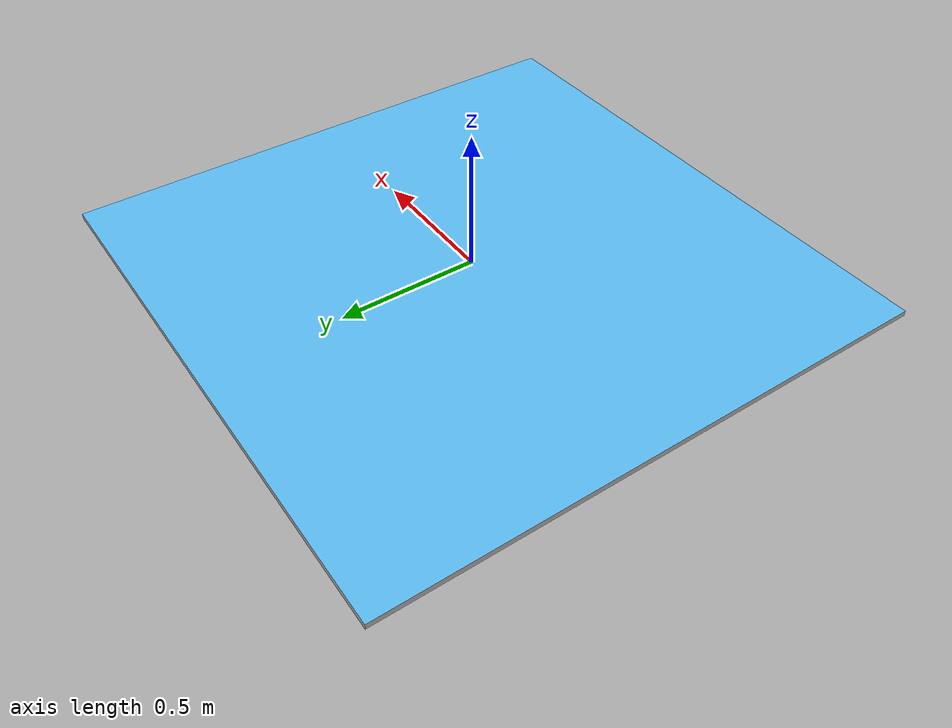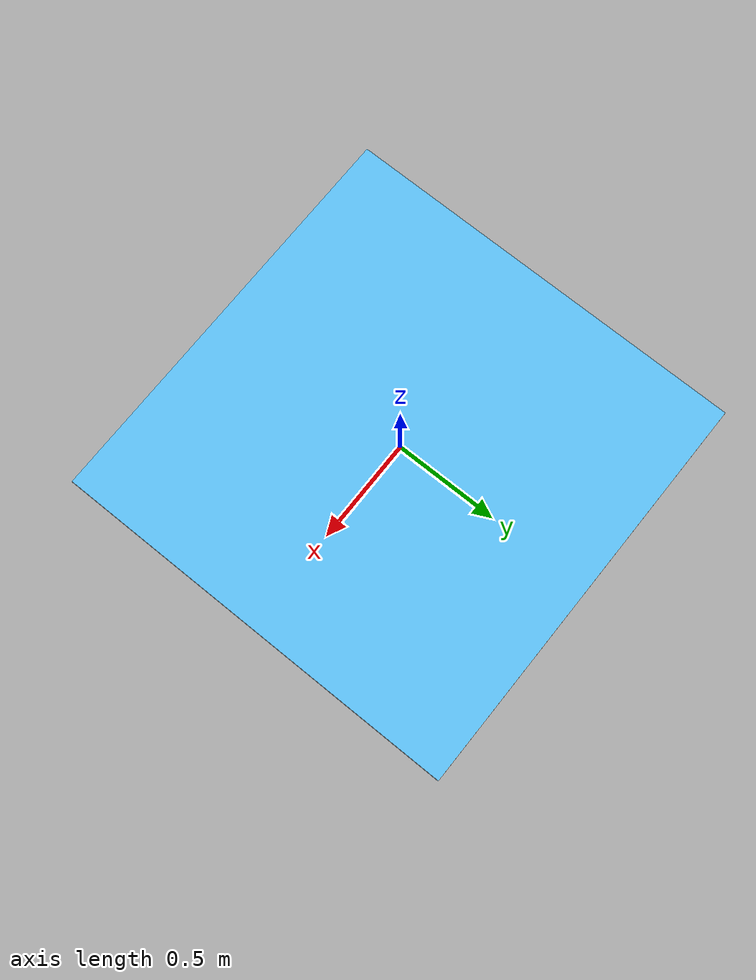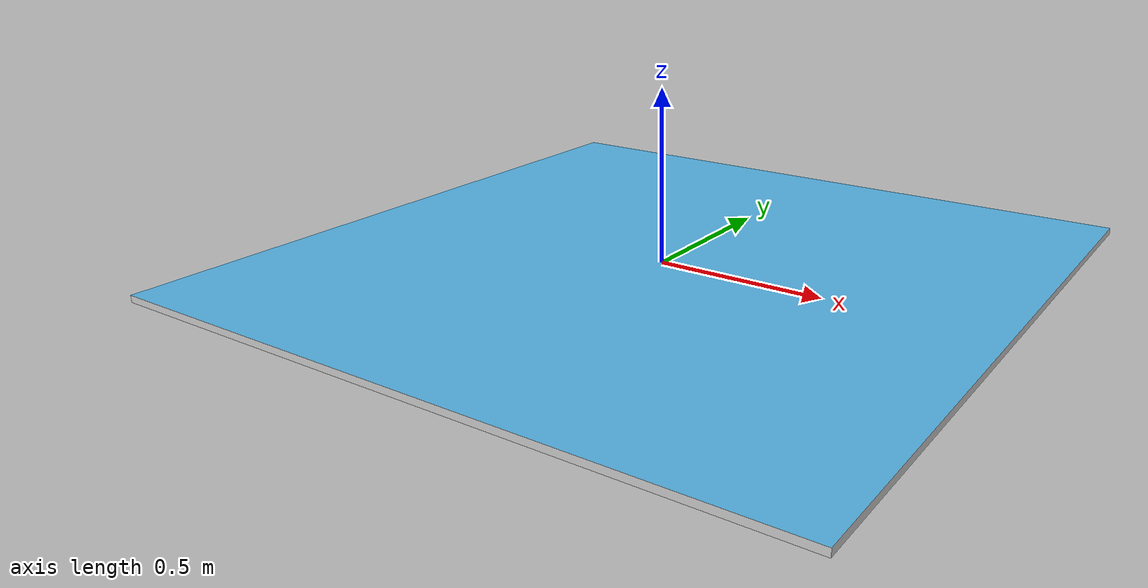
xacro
<?xml version="1.0"?>
<robot xmlns:xacro="http://www.ros.org/wiki/xacro" name="robot">

  <!-- Define constants and macros if needed -->
  <xacro:property name="mesh_filename" value="$(find test_texture)/meshes/test.dae"/>
  <xacro:property name="mesh_scale" value="1 1 1"/>

  <!-- World tag-->
  <link name="my_world"></link>

  <!-- The base origin is offset from the world origin. -->
  <joint name="base_joint" type="fixed">
    <origin xyz="0 0 0" rpy="0 0 0"/>
    <parent link="my_world"/>
    <child link="textured_link"/>
  </joint>

  <link name="textured_link">
    <visual>
      <geometry>
        <mesh filename="${mesh_filename}" scale="${mesh_scale}"/>
      </geometry>
    </visual>
    <inertial>
      <origin xyz="0 0 0"/>
      <mass value="1.0"/>
      <inertia ixx="0.1" ixy="0.0" ixz="0.0" iyy="0.1" iyz="0.0" izz="0.1"/>
    </inertial>
  </link>
</robot>
